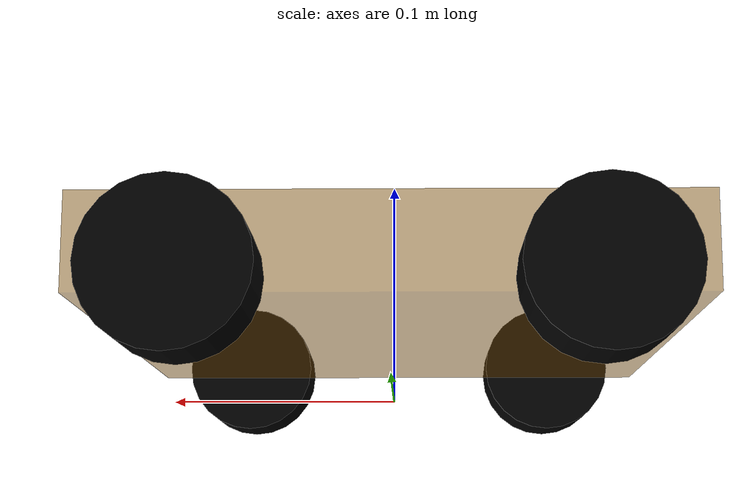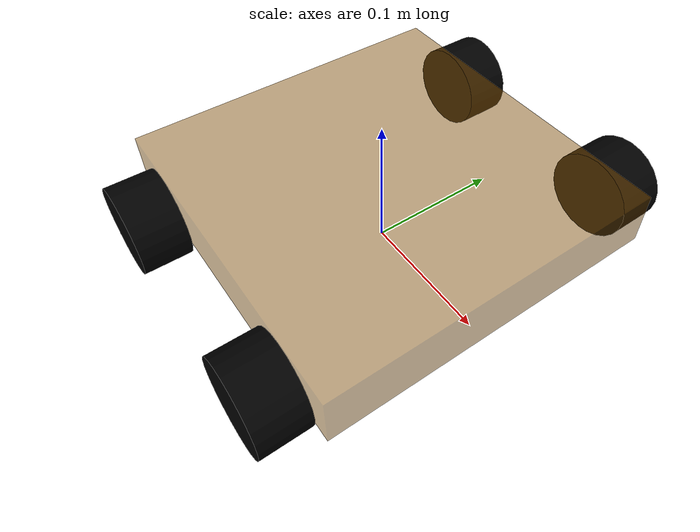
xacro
<robot name="my_base" xmlns:xacro="http://www.ros.org/wiki/xacro">

    <!-- Include common properties and macros -->
    <xacro:include filename="common_properties.urdf.xacro" />
    <xacro:include filename="common_macros.urdf.xacro" />

    <!-- Material for Rviz -->
    <material name="black">
        <color rgba="0.0 0.0 0.0 1.0" />
    </material>
    <material name="yellow">
        <color rgba="0.5 0.3 0.0 0.5" />
    </material>

    <!-- Base footprint is a standard convention in ROS. It's a point on the ground directly below the robot's center. -->
    <link name="base_footprint" />

    <!-- Base link is the main body of the robot. -->
    <link name="base_link">
      <visual>
        <geometry>
          <box size="${base_link_long} ${base_link_long} ${base_link_length}"/>
        </geometry>
        <origin xyz="0 0 0" rpy="0 0 0" />
        <material name="yellow" />
      </visual>
      <collision>
        <geometry>
          <box size="${base_link_long} ${base_link_long} ${base_link_length}"/>
        </geometry>
        <origin xyz="0 0 0" rpy="0 0 0" />
      </collision>
      <xacro:Box_inertial_matrix m="${base_link_m}" l="${base_link_long}" w="${base_link_long}" h="${base_link_length}" />
    </link>

    <joint name="base_link_to_base_footprint" type="fixed">
      <parent link="base_footprint" />
      <child link="base_link" />
      <origin xyz="0 0 ${wheel_radius + earth_space}" />
    </joint>

    <gazebo reference="base_link">
        <material>Gazebo/Yellow</material>
    </gazebo>

    <!-- Macro to create a wheel and attach it to the base_link -->
    <xacro:macro name="add_wheel" params="name x_offset y_offset">
      <link name="${name}_wheel">
        <visual>
          <geometry>
            <cylinder radius="${wheel_radius}" length="${wheel_length}" />
          </geometry>
          <origin xyz="0.0 0.0 0.0" rpy="${PI / 2} 0.0 0.0" />
          <material name="black" />
        </visual>
        <collision>
          <geometry>
            <cylinder radius="${wheel_radius}" length="${wheel_length}" />
          </geometry>
          <origin xyz="0.0 0.0 0.0" rpy="${PI / 2} 0.0 0.0" />
        </collision>
        <xacro:cylinder_inertial_matrix m="${wheel_m}" r="${wheel_radius}" h="${wheel_length}" />
      </link>

      <joint name="${name}_wheel_to_base_link" type="continuous">
        <parent link="base_link" />
        <child link="${name}_wheel" />
        <origin xyz="${x_offset} ${y_offset} ${-earth_space}" rpy="0 0 0" />
        <axis xyz="0 1 0" />
      </joint>

      <gazebo reference="${name}_wheel">
        <material>Gazebo/Red</material>
      </gazebo>
    </xacro:macro>

    <!-- Instantiation of the four wheels -->
    <xacro:property name="wheel_x_offset" value="0.08" />
    <xacro:property name="wheel_y_offset" value="${base_link_long / 2 + wheel_length / 2}" />

    <xacro:add_wheel name="left_front"  x_offset="${wheel_x_offset}" y_offset="${wheel_y_offset}" />
    <xacro:add_wheel name="left_rear"   x_offset="-${wheel_x_offset}" y_offset="${wheel_y_offset}" />
    <xacro:add_wheel name="right_front" x_offset="${wheel_x_offset}" y_offset="-${wheel_y_offset}" />
    <xacro:add_wheel name="right_rear"  x_offset="-${wheel_x_offset}" y_offset="-${wheel_y_offset}" />

</robot>

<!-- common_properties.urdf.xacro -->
<robot xmlns:xacro="http://www.ros.org/wiki/xacro">
    <!-- This file contains the common properties and parameters for the robot model. -->

    <!-- Constants -->
    <xacro:property name="PI" value="3.1415926535897931" />

    <!-- Base Properties -->
    <xacro:property name="base_link_long" value="0.25" />
    <xacro:property name="base_link_length" value="0.04" />
    <xacro:property name="base_link_m" value="0.30" />
    <xacro:property name="earth_space" value="0.015" />

    <!-- Wheel Properties -->
    <xacro:property name="wheel_radius" value="0.0325" />
    <xacro:property name="wheel_length" value="0.035" />
    <xacro:property name="wheel_m" value="0.05" />

    <!-- Camera Properties -->
    <xacro:property name="camera_length" value="0.01" />
    <xacro:property name="camera_width" value="0.025" />
    <xacro:property name="camera_height" value="0.025" />
    <xacro:property name="camera_m" value="0.01" />
    <!-- Camera Position -->
    <xacro:property name="camera_x" value="${base_link_long / 2 + camera_length / 2}" />
    <xacro:property name="camera_y" value="0.0" />
    <xacro:property name="camera_z" value="${base_link_length / 2 + camera_height / 2}" />

    <!-- Laser and its Support Properties -->
    <!-- Support -->
    <xacro:property name="support_length" value="0.05" />
    <xacro:property name="support_radius" value="0.01" />
    <xacro:property name="support_m" value="0.02" />
    <!-- Support Position -->
    <xacro:property name="support_x" value="0.0" />
    <xacro:property name="support_y" value="0.0" />
    <xacro:property name="support_z" value="${base_link_length / 2 + support_length / 2}" />
    <!-- Laser -->
    <xacro:property name="laser_length" value="0.05" />
    <xacro:property name="laser_radius" value="0.03" />
    <xacro:property name="laser_m" value="0.1" />
    <!-- Laser Position -->
    <xacro:property name="laser_x" value="0.0" />
    <xacro:property name="laser_y" value="0.0" />
    <xacro:property name="laser_z" value="${support_length / 2 + laser_length / 2}" />

</robot>

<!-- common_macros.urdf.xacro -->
<robot xmlns:xacro="http://www.ros.org/wiki/xacro">
    <!-- This file contains common macros for the robot model, like inertia matrix calculations. -->

    <!-- Macro for inertia matrix -->
    <xacro:macro name="sphere_inertial_matrix" params="m r">
        <inertial>
            <mass value="${m}" />
            <inertia ixx="${2*m*r*r/5}" ixy="0" ixz="0"
                iyy="${2*m*r*r/5}" iyz="0"
                izz="${2*m*r*r/5}" />
        </inertial>
    </xacro:macro>

    <xacro:macro name="cylinder_inertial_matrix" params="m r h">
        <inertial>
            <mass value="${m}" />
            <inertia ixx="${m*(3*r*r+h*h)/12}" ixy = "0" ixz = "0"
                iyy="${m*(3*r*r+h*h)/12}" iyz = "0"
                izz="${m*r*r/2}" />
        </inertial>
    </xacro:macro>

    <xacro:macro name="Box_inertial_matrix" params="m l w h">
       <inertial>
               <mass value="${m}" />
               <inertia ixx="${m*(h*h + l*l)/12}" ixy = "0" ixz = "0"
                   iyy="${m*(w*w + l*l)/12}" iyz= "0"
                   izz="${m*(w*w + h*h)/12}" />
       </inertial>
   </xacro:macro>
</robot>
